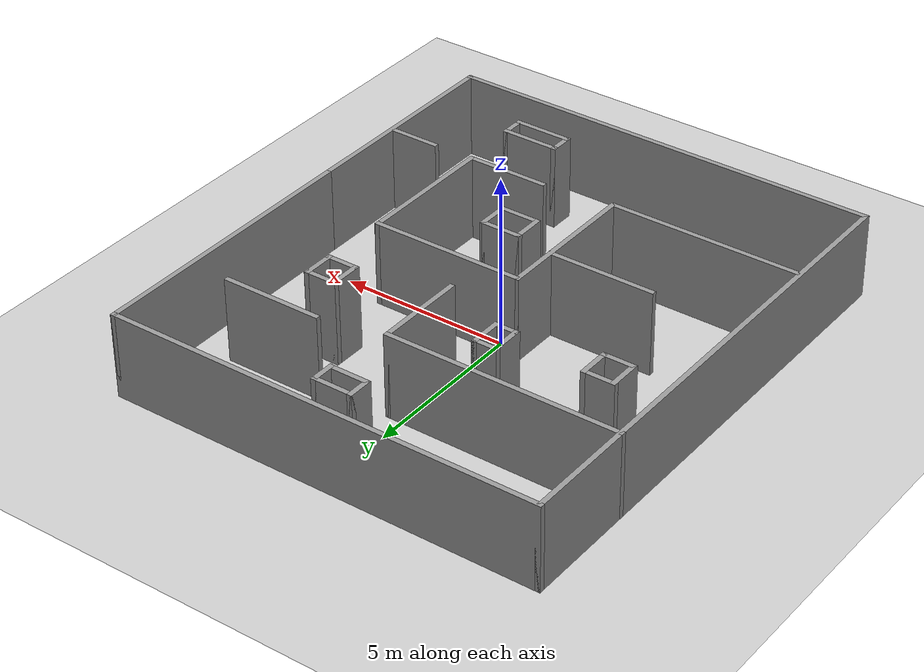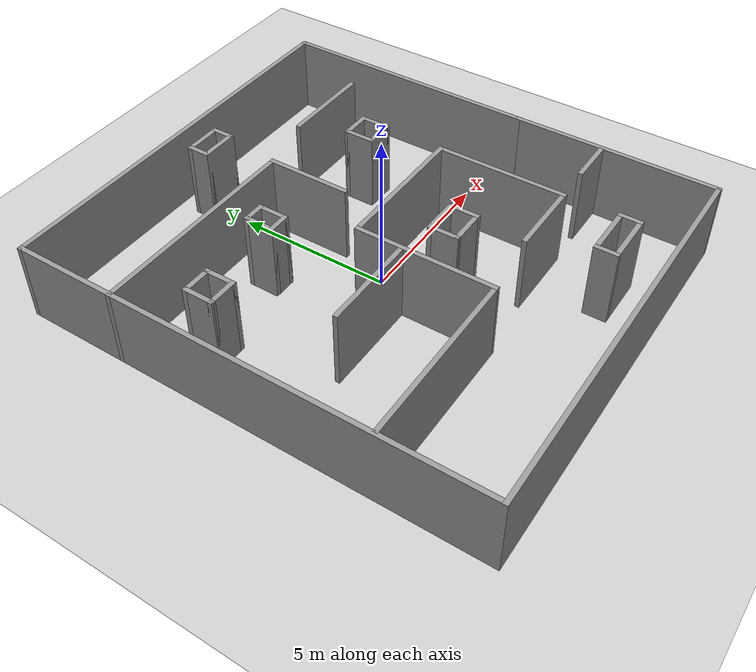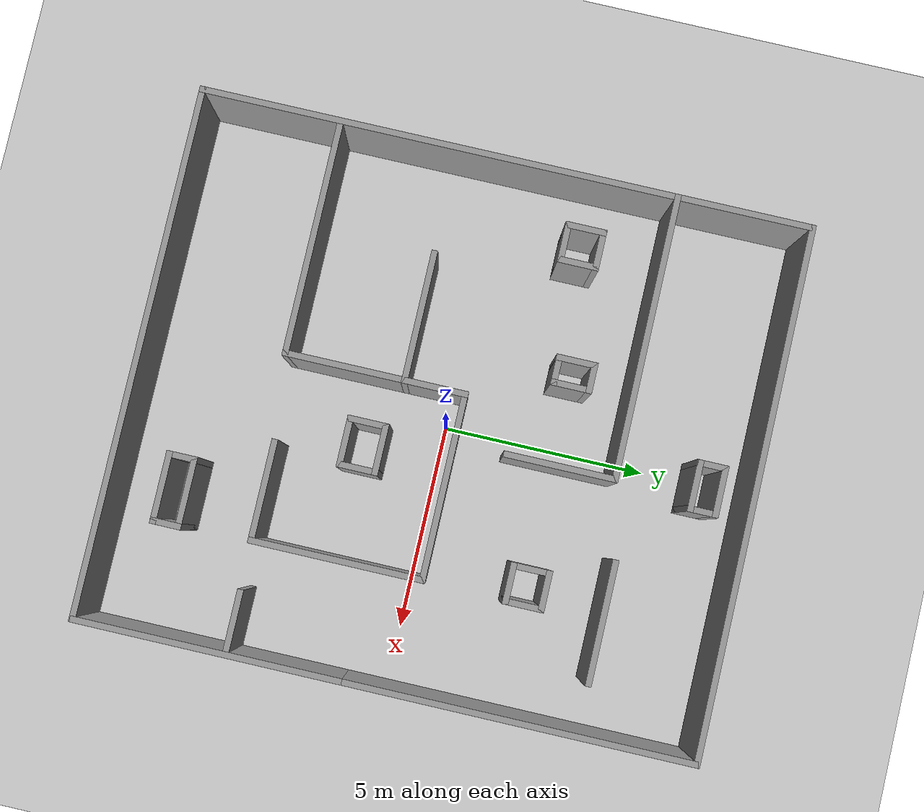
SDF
<sdf version='1.7'>
  <world name='default'>
    <light name='sun' type='directional'>
      <cast_shadows>1</cast_shadows>
      <pose>0 0 10 0 0 0</pose>
      <diffuse>0.8 0.8 0.8 1</diffuse>
      <specular>0.2 0.2 0.2 1</specular>
      <attenuation>
        <range>1000</range>
        <constant>0.9</constant>
        <linear>0.01</linear>
        <quadratic>0.001</quadratic>
      </attenuation>
      <direction>-0.5 0.1 -0.9</direction>
      <spot>
        <inner_angle>0</inner_angle>
        <outer_angle>0</outer_angle>
        <falloff>0</falloff>
      </spot>
    </light>
    <model name='ground_plane'>
      <static>1</static>
      <link name='link'>
        <collision name='collision'>
          <geometry>
            <plane>
              <normal>0 0 1</normal>
              <size>100 100</size>
            </plane>
          </geometry>
          <surface>
            <friction>
              <ode>
                <mu>100</mu>
                <mu2>50</mu2>
              </ode>
              <torsional>
                <ode/>
              </torsional>
            </friction>
            <contact>
              <ode/>
            </contact>
            <bounce/>
          </surface>
          <max_contacts>10</max_contacts>
        </collision>
        <visual name='visual'>
          <cast_shadows>0</cast_shadows>
          <geometry>
            <plane>
              <normal>0 0 1</normal>
              <size>100 100</size>
            </plane>
          </geometry>
          <material>
            <script>
              <uri>file://media/materials/scripts/gazebo.material</uri>
              <name>Gazebo/Grey</name>
            </script>
          </material>
        </visual>
        <self_collide>0</self_collide>
        <enable_wind>0</enable_wind>
        <kinematic>0</kinematic>
      </link>
    </model>
    <gravity>0 0 -9.8</gravity>
    <magnetic_field>6e-06 2.3e-05 -4.2e-05</magnetic_field>
    <atmosphere type='adiabatic'/>
    <physics type='ode'>
      <max_step_size>0.001</max_step_size>
      <real_time_factor>1</real_time_factor>
      <real_time_update_rate>1000</real_time_update_rate>
    </physics>
    <scene>
      <ambient>0.4 0.4 0.4 1</ambient>
      <background>0.7 0.7 0.7 1</background>
      <shadows>1</shadows>
    </scene>
    <audio>
      <device>default</device>
    </audio>
    <wind/>
    <spherical_coordinates>
      <surface_model>EARTH_WGS84</surface_model>
      <latitude_deg>0</latitude_deg>
      <longitude_deg>0</longitude_deg>
      <elevation>0</elevation>
      <heading_deg>0</heading_deg>
    </spherical_coordinates>

    <model name='modelfloor'>
      <pose>0 0 0 0 0 0</pose>
      <link name='Wall_10'>
        <collision name='Wall_10_Collision'>
          <geometry>
            <box>
              <size>6.65 0.15 2.5</size>
            </box>
          </geometry>
          <pose>0 0 1.25 0 -0 0</pose>
        </collision>
        <visual name='Wall_10_Visual'>
          <pose>0 0 1.25 0 -0 0</pose>
          <geometry>
            <box>
              <size>6.65 0.15 2.5</size>
            </box>
          </geometry>
          <material>
            <script>
              <uri>file://media/materials/scripts/gazebo.material</uri>
              <name>Gazebo/Grey</name>
            </script>
            <ambient>0 0 0 1</ambient>
          </material>
          <meta>
            <layer>0</layer>
          </meta>
        </visual>
        <pose>6.42526 -4.175 0 0 -0 1.5708</pose>
      </link>
      <link name='Wall_12'>
        <collision name='Wall_12_Collision'>
          <geometry>
            <box>
              <size>5.75 0.15 2.5</size>
            </box>
          </geometry>
          <pose>0 0 1.25 0 -0 0</pose>
        </collision>
        <visual name='Wall_12_Visual'>
          <pose>0 0 1.25 0 -0 0</pose>
          <geometry>
            <box>
              <size>5.75 0.15 2.5</size>
            </box>
          </geometry>
          <material>
            <script>
              <uri>file://media/materials/scripts/gazebo.material</uri>
              <name>Gazebo/Grey</name>
            </script>
            <ambient>0 0 0 1</ambient>
          </material>
          <meta>
            <layer>0</layer>
          </meta>
        </visual>
        <pose>-3.53364 -4.04218 0 0 -0 8.3e-05</pose>
      </link>
      <link name='Wall_13'>
        <collision name='Wall_13_Collision'>
          <geometry>
            <box>
              <size>4.488 0.15 2.5</size>
            </box>
          </geometry>
          <pose>0 0 1.25 0 -0 0</pose>
        </collision>
        <visual name='Wall_13_Visual'>
          <pose>0 0 1.25 0 -0 0</pose>
          <geometry>
            <box>
              <size>4.488 0.15 2.5</size>
            </box>
          </geometry>
          <material>
            <script>
              <uri>file://media/materials/scripts/gazebo.material</uri>
              <name>Gazebo/Grey</name>
            </script>
            <ambient>0 0 0 1</ambient>
          </material>
          <meta>
            <layer>0</layer>
          </meta>
        </visual>
        <pose>-0.73368 -1.87295 0 0 -0 1.5708</pose>
      </link>
      <link name='Wall_14'>
        <collision name='Wall_14_Collision'>
          <geometry>
            <box>
              <size>4.60358 0.15 2.5</size>
            </box>
          </geometry>
          <pose>0 0 1.25 0 -0 0</pose>
        </collision>
        <visual name='Wall_14_Visual'>
          <pose>0 0 1.25 0 -0 0</pose>
          <geometry>
            <box>
              <size>4.60358 0.15 2.5</size>
            </box>
          </geometry>
          <material>
            <script>
              <uri>file://media/materials/scripts/gazebo.material</uri>
              <name>Gazebo/Grey</name>
            </script>
            <ambient>0 0 0 1</ambient>
          </material>
          <meta>
            <layer>0</layer>
          </meta>
        </visual>
        <pose>1.49311 0.296068 0 0 -0 8e-06</pose>
      </link>
      <link name='Wall_15'>
        <collision name='Wall_15_Collision'>
          <geometry>
            <box>
              <size>4.25 0.15 2.5</size>
            </box>
          </geometry>
          <pose>0 0 1.25 0 -0 0</pose>
        </collision>
        <visual name='Wall_15_Visual'>
          <pose>0 0 1.25 0 -0 0</pose>
          <geometry>
            <box>
              <size>4.25 0.15 2.5</size>
            </box>
          </geometry>
          <material>
            <script>
              <uri>file://media/materials/scripts/gazebo.material</uri>
              <name>Gazebo/Grey</name>
            </script>
            <ambient>0 0 0 1</ambient>
          </material>
          <meta>
            <layer>0</layer>
          </meta>
        </visual>
        <pose>3.7199 -1.75391 0 0 -0 -1.5708</pose>
      </link>
      <link name='Wall_16'>
        <collision name='Wall_16_Collision'>
          <geometry>
            <box>
              <size>2.5 0.15 2.5</size>
            </box>
          </geometry>
          <pose>0 0 1.25 0 -0 0</pose>
        </collision>
        <visual name='Wall_16_Visual'>
          <pose>0 0 1.25 0 -0 0</pose>
          <geometry>
            <box>
              <size>2.5 0.15 2.5</size>
            </box>
          </geometry>
          <material>
            <script>
              <uri>file://media/materials/scripts/gazebo.material</uri>
              <name>Gazebo/Grey</name>
            </script>
            <ambient>0 0 0 1</ambient>
          </material>
          <meta>
            <layer>0</layer>
          </meta>
        </visual>
        <pose>2.5449 -3.80391 0 0 -0 3.14159</pose>
      </link>
      <link name='Wall_18'>
        <collision name='Wall_18_Collision'>
          <geometry>
            <box>
              <size>3.236 0.15 2.5</size>
            </box>
          </geometry>
          <pose>0 0 1.25 0 -0 0</pose>
        </collision>
        <visual name='Wall_18_Visual'>
          <pose>0 0 1.25 0 -0 0</pose>
          <geometry>
            <box>
              <size>3.236 0.15 2.5</size>
            </box>
          </geometry>
          <material>
            <script>
              <uri>file://media/materials/scripts/gazebo.material</uri>
              <name>Gazebo/Grey</name>
            </script>
            <ambient>0 0 0 1</ambient>
          </material>
          <meta>
            <layer>0</layer>
          </meta>
        </visual>
        <pose>-2.27668 -1.16295 0 0 -0 0</pose>
      </link>
      <link name='Wall_20'>
        <collision name='Wall_20_Collision'>
          <geometry>
            <box>
              <size>7 0.15 2.5</size>
            </box>
          </geometry>
          <pose>0 0 1.25 0 -0 0</pose>
        </collision>
        <visual name='Wall_20_Visual'>
          <pose>0 0 1.25 0 -0 0</pose>
          <geometry>
            <box>
              <size>7 0.15 2.5</size>
            </box>
          </geometry>
          <material>
            <script>
              <uri>file://media/materials/scripts/gazebo.material</uri>
              <name>Gazebo/Grey</name>
            </script>
            <ambient>0 0 0 1</ambient>
          </material>
          <meta>
            <layer>0</layer>
          </meta>
        </visual>
        <pose>-3.00027 4.15871 0 0 -0 0</pose>
      </link>
      <link name='Wall_21'>
        <collision name='Wall_21_Collision'>
          <geometry>
            <box>
              <size>2.75 0.15 2.5</size>
            </box>
          </geometry>
          <pose>0 0 1.25 0 -0 0</pose>
        </collision>
        <visual name='Wall_21_Visual'>
          <pose>0 0 1.25 0 -0 0</pose>
          <geometry>
            <box>
              <size>2.75 0.15 2.5</size>
            </box>
          </geometry>
          <material>
            <script>
              <uri>file://media/materials/scripts/gazebo.material</uri>
              <name>Gazebo/Grey</name>
            </script>
            <ambient>0 0 0 1</ambient>
          </material>
          <meta>
            <layer>0</layer>
          </meta>
        </visual>
        <pose>0.424735 2.85871 0 0 -0 -1.5708</pose>
      </link>
      <link name='Wall_23'>
        <collision name='Wall_23_Collision'>
          <geometry>
            <box>
              <size>3 0.15 2.5</size>
            </box>
          </geometry>
          <pose>0 0 1.25 0 -0 0</pose>
        </collision>
        <visual name='Wall_23_Visual'>
          <pose>0 0 1.25 0 -0 0</pose>
          <geometry>
            <box>
              <size>3 0.15 2.5</size>
            </box>
          </geometry>
          <material>
            <script>
              <uri>file://media/materials/scripts/gazebo.material</uri>
              <name>Gazebo/Grey</name>
            </script>
            <ambient>0 0 0 1</ambient>
          </material>
          <meta>
            <layer>0</layer>
          </meta>
        </visual>
        <pose>3.74854 4.58698 0 0 -0 0</pose>
      </link>
      <link name='Wall_27'>
        <collision name='Wall_27_Collision'>
          <geometry>
            <box>
              <size>1 0.15 2.5</size>
            </box>
          </geometry>
          <pose>0 0 1.25 0 -0 0</pose>
        </collision>
        <visual name='Wall_27_Visual'>
          <pose>0 0 1.25 0 -0 0</pose>
          <geometry>
            <box>
              <size>1 0.15 2.5</size>
            </box>
          </geometry>
          <material>
            <script>
              <uri>file://media/materials/scripts/gazebo.material</uri>
              <name>Gazebo/Grey</name>
            </script>
            <ambient>0 0 0 1</ambient>
          </material>
          <meta>
            <layer>0</layer>
          </meta>
        </visual>
        <pose>0.426946 -1.77253 0 0 -0 -1.5708</pose>
      </link>
      <link name='Wall_28'>
        <collision name='Wall_28_Collision'>
          <geometry>
            <box>
              <size>1.25 0.15 2.5</size>
            </box>
          </geometry>
          <pose>0 0 1.25 0 -0 0</pose>
        </collision>
        <visual name='Wall_28_Visual'>
          <pose>0 0 1.25 0 -0 0</pose>
          <geometry>
            <box>
              <size>1.25 0.15 2.5</size>
            </box>
          </geometry>
          <material>
            <script>
              <uri>file://media/materials/scripts/gazebo.material</uri>
              <name>Gazebo/Grey</name>
            </script>
            <ambient>0 0 0 1</ambient>
          </material>
          <meta>
            <layer>0</layer>
          </meta>
        </visual>
        <pose>0.976946 -2.19753 0 0 -0 0</pose>
      </link>
      <link name='Wall_29'>
        <collision name='Wall_29_Collision'>
          <geometry>
            <box>
              <size>1 0.15 2.5</size>
            </box>
          </geometry>
          <pose>0 0 1.25 0 -0 0</pose>
        </collision>
        <visual name='Wall_29_Visual'>
          <pose>0 0 1.25 0 -0 0</pose>
          <geometry>
            <box>
              <size>1 0.15 2.5</size>
            </box>
          </geometry>
          <material>
            <script>
              <uri>file://media/materials/scripts/gazebo.material</uri>
              <name>Gazebo/Grey</name>
            </script>
            <ambient>0 0 0 1</ambient>
          </material>
          <meta>
            <layer>0</layer>
          </meta>
        </visual>
        <pose>1.52695 -1.77253 0 0 -0 1.5708</pose>
      </link>
      <link name='Wall_30'>
        <collision name='Wall_30_Collision'>
          <geometry>
            <box>
              <size>1.25 0.15 2.5</size>
            </box>
          </geometry>
          <pose>0 0 1.25 0 -0 0</pose>
        </collision>
        <visual name='Wall_30_Visual'>
          <pose>0 0 1.25 0 -0 0</pose>
          <geometry>
            <box>
              <size>1.25 0.15 2.5</size>
            </box>
          </geometry>
          <material>
            <script>
              <uri>file://media/materials/scripts/gazebo.material</uri>
              <name>Gazebo/Grey</name>
            </script>
            <ambient>0 0 0 1</ambient>
          </material>
          <meta>
            <layer>0</layer>
          </meta>
        </visual>
        <pose>0.976946 -1.34753 0 0 -0 3.14159</pose>
      </link>
      <link name='Wall_32'>
        <collision name='Wall_32_Collision'>
          <geometry>
            <box>
              <size>1 0.15 2.5</size>
            </box>
          </geometry>
          <pose>0 0 1.25 0 -0 0</pose>
        </collision>
        <visual name='Wall_32_Visual'>
          <pose>0 0 1.25 0 -0 0</pose>
          <geometry>
            <box>
              <size>1 0.15 2.5</size>
            </box>
          </geometry>
          <material>
            <script>
              <uri>file://media/materials/scripts/gazebo.material</uri>
              <name>Gazebo/Grey</name>
            </script>
            <ambient>0 0 0 1</ambient>
          </material>
          <meta>
            <layer>0</layer>
          </meta>
        </visual>
        <pose>-5.20166 2.2042 0 0 -0 -1.5708</pose>
      </link>
      <link name='Wall_33'>
        <collision name='Wall_33_Collision'>
          <geometry>
            <box>
              <size>1 0.15 2.5</size>
            </box>
          </geometry>
          <pose>0 0 1.25 0 -0 0</pose>
        </collision>
        <visual name='Wall_33_Visual'>
          <pose>0 0 1.25 0 -0 0</pose>
          <geometry>
            <box>
              <size>1 0.15 2.5</size>
            </box>
          </geometry>
          <material>
            <script>
              <uri>file://media/materials/scripts/gazebo.material</uri>
              <name>Gazebo/Grey</name>
            </script>
            <ambient>0 0 0 1</ambient>
          </material>
          <meta>
            <layer>0</layer>
          </meta>
        </visual>
        <pose>-4.77666 1.7792 0 0 -0 0</pose>
      </link>
      <link name='Wall_34'>
        <collision name='Wall_34_Collision'>
          <geometry>
            <box>
              <size>1 0.15 2.5</size>
            </box>
          </geometry>
          <pose>0 0 1.25 0 -0 0</pose>
        </collision>
        <visual name='Wall_34_Visual'>
          <pose>0 0 1.25 0 -0 0</pose>
          <geometry>
            <box>
              <size>1 0.15 2.5</size>
            </box>
          </geometry>
          <material>
            <script>
              <uri>file://media/materials/scripts/gazebo.material</uri>
              <name>Gazebo/Grey</name>
            </script>
            <ambient>0 0 0 1</ambient>
          </material>
          <meta>
            <layer>0</layer>
          </meta>
        </visual>
        <pose>-4.35166 2.2042 0 0 -0 1.5708</pose>
      </link>
      <link name='Wall_35'>
        <collision name='Wall_35_Collision'>
          <geometry>
            <box>
              <size>1 0.15 2.5</size>
            </box>
          </geometry>
          <pose>0 0 1.25 0 -0 0</pose>
        </collision>
        <visual name='Wall_35_Visual'>
          <pose>0 0 1.25 0 -0 0</pose>
          <geometry>
            <box>
              <size>1 0.15 2.5</size>
            </box>
          </geometry>
          <material>
            <script>
              <uri>file://media/materials/scripts/gazebo.material</uri>
              <name>Gazebo/Grey</name>
            </script>
            <ambient>0 0 0 1</ambient>
          </material>
          <meta>
            <layer>0</layer>
          </meta>
        </visual>
        <pose>-4.77666 2.6292 0 0 -0 3.14159</pose>
      </link>
      <link name='Wall_4'>
        <collision name='Wall_4_Collision'>
          <geometry>
            <box>
              <size>15 0.15 2.5</size>
            </box>
          </geometry>
          <pose>0 0 1.25 0 -0 0</pose>
        </collision>
        <visual name='Wall_4_Visual'>
          <pose>0 0 1.25 0 -0 0</pose>
          <geometry>
            <box>
              <size>15 0.15 2.5</size>
            </box>
          </geometry>
          <material>
            <script>
              <uri>file://media/materials/scripts/gazebo.material</uri>
              <name>Gazebo/Grey</name>
            </script>
            <ambient>0 0 0 1</ambient>
          </material>
          <meta>
            <layer>0</layer>
          </meta>
        </visual>
        <pose>-6.42474 -0 0 0 -0 -1.5708</pose>
      </link>
      <link name='Wall_42'>
        <collision name='Wall_42_Collision'>
          <geometry>
            <box>
              <size>1 0.15 2.5</size>
            </box>
          </geometry>
          <pose>0 0 1.25 0 -0 0</pose>
        </collision>
        <visual name='Wall_42_Visual'>
          <pose>0 0 1.25 0 -0 0</pose>
          <geometry>
            <box>
              <size>1 0.15 2.5</size>
            </box>
          </geometry>
          <material>
            <script>
              <uri>file://media/materials/scripts/gazebo.material</uri>
              <name>Gazebo/Grey</name>
            </script>
            <ambient>0 0 0 1</ambient>
          </material>
          <meta>
            <layer>0</layer>
          </meta>
        </visual>
        <pose>2.91019 2.71701 0 0 -0 -1.5708</pose>
      </link>
      <link name='Wall_43'>
        <collision name='Wall_43_Collision'>
          <geometry>
            <box>
              <size>1 0.15 2.5</size>
            </box>
          </geometry>
          <pose>0 0 1.25 0 -0 0</pose>
        </collision>
        <visual name='Wall_43_Visual'>
          <pose>0 0 1.25 0 -0 0</pose>
          <geometry>
            <box>
              <size>1 0.15 2.5</size>
            </box>
          </geometry>
          <material>
            <script>
              <uri>file://media/materials/scripts/gazebo.material</uri>
              <name>Gazebo/Grey</name>
            </script>
            <ambient>0 0 0 1</ambient>
          </material>
          <meta>
            <layer>0</layer>
          </meta>
        </visual>
        <pose>3.33519 2.29201 0 0 -0 0</pose>
      </link>
      <link name='Wall_44'>
        <collision name='Wall_44_Collision'>
          <geometry>
            <box>
              <size>1 0.15 2.5</size>
            </box>
          </geometry>
          <pose>0 0 1.25 0 -0 0</pose>
        </collision>
        <visual name='Wall_44_Visual'>
          <pose>0 0 1.25 0 -0 0</pose>
          <geometry>
            <box>
              <size>1 0.15 2.5</size>
            </box>
          </geometry>
          <material>
            <script>
              <uri>file://media/materials/scripts/gazebo.material</uri>
              <name>Gazebo/Grey</name>
            </script>
            <ambient>0 0 0 1</ambient>
          </material>
          <meta>
            <layer>0</layer>
          </meta>
        </visual>
        <pose>3.76019 2.71701 0 0 -0 1.5708</pose>
      </link>
      <link name='Wall_45'>
        <collision name='Wall_45_Collision'>
          <geometry>
            <box>
              <size>1 0.15 2.5</size>
            </box>
          </geometry>
          <pose>0 0 1.25 0 -0 0</pose>
        </collision>
        <visual name='Wall_45_Visual'>
          <pose>0 0 1.25 0 -0 0</pose>
          <geometry>
            <box>
              <size>1 0.15 2.5</size>
            </box>
          </geometry>
          <material>
            <script>
              <uri>file://media/materials/scripts/gazebo.material</uri>
              <name>Gazebo/Grey</name>
            </script>
            <ambient>0 0 0 1</ambient>
          </material>
          <meta>
            <layer>0</layer>
          </meta>
        </visual>
        <pose>3.33519 3.14201 0 0 -0 3.14159</pose>
      </link>
      <link name='Wall_47'>
        <collision name='Wall_47_Collision'>
          <geometry>
            <box>
              <size>0.75 0.15 2.5</size>
            </box>
          </geometry>
          <pose>0 0 1.25 0 -0 0</pose>
        </collision>
        <visual name='Wall_47_Visual'>
          <pose>0 0 1.25 0 -0 0</pose>
          <geometry>
            <box>
              <size>0.75 0.15 2.5</size>
            </box>
          </geometry>
          <material>
            <script>
              <uri>file://media/materials/scripts/gazebo.material</uri>
              <name>Gazebo/Grey</name>
            </script>
            <ambient>0 0 0 1</ambient>
          </material>
          <meta>
            <layer>0</layer>
          </meta>
        </visual>
        <pose>-0.39928 6.32141 0 0 -0 -1.5708</pose>
      </link>
      <link name='Wall_48'>
        <collision name='Wall_48_Collision'>
          <geometry>
            <box>
              <size>1.25 0.15 2.5</size>
            </box>
          </geometry>
          <pose>0 0 1.25 0 -0 0</pose>
        </collision>
        <visual name='Wall_48_Visual'>
          <pose>0 0 1.25 0 -0 0</pose>
          <geometry>
            <box>
              <size>1.25 0.15 2.5</size>
            </box>
          </geometry>
          <material>
            <script>
              <uri>file://media/materials/scripts/gazebo.material</uri>
              <name>Gazebo/Grey</name>
            </script>
            <ambient>0 0 0 1</ambient>
          </material>
          <meta>
            <layer>0</layer>
          </meta>
        </visual>
        <pose>0.15072 6.02141 0 0 -0 0</pose>
      </link>
      <link name='Wall_49'>
        <collision name='Wall_49_Collision'>
          <geometry>
            <box>
              <size>0.75 0.15 2.5</size>
            </box>
          </geometry>
          <pose>0 0 1.25 0 -0 0</pose>
        </collision>
        <visual name='Wall_49_Visual'>
          <pose>0 0 1.25 0 -0 0</pose>
          <geometry>
            <box>
              <size>0.75 0.15 2.5</size>
            </box>
          </geometry>
          <material>
            <script>
              <uri>file://media/materials/scripts/gazebo.material</uri>
              <name>Gazebo/Grey</name>
            </script>
            <ambient>0 0 0 1</ambient>
          </material>
          <meta>
            <layer>0</layer>
          </meta>
        </visual>
        <pose>0.70072 6.32141 0 0 -0 1.5708</pose>
      </link>
      <link name='Wall_50'>
        <collision name='Wall_50_Collision'>
          <geometry>
            <box>
              <size>1.25 0.15 2.5</size>
            </box>
          </geometry>
          <pose>0 0 1.25 0 -0 0</pose>
        </collision>
        <visual name='Wall_50_Visual'>
          <pose>0 0 1.25 0 -0 0</pose>
          <geometry>
            <box>
              <size>1.25 0.15 2.5</size>
            </box>
          </geometry>
          <material>
            <script>
              <uri>file://media/materials/scripts/gazebo.material</uri>
              <name>Gazebo/Grey</name>
            </script>
            <ambient>0 0 0 1</ambient>
          </material>
          <meta>
            <layer>0</layer>
          </meta>
        </visual>
        <pose>0.15072 6.62141 0 0 -0 3.14159</pose>
      </link>
      <link name='Wall_52'>
        <collision name='Wall_52_Collision'>
          <geometry>
            <box>
              <size>1 0.15 2.5</size>
            </box>
          </geometry>
          <pose>0 0 1.25 0 -0 0</pose>
        </collision>
        <visual name='Wall_52_Visual'>
          <pose>0 0 1.25 0 -0 0</pose>
          <geometry>
            <box>
              <size>1 0.15 2.5</size>
            </box>
          </geometry>
          <material>
            <script>
              <uri>file://media/materials/scripts/gazebo.material</uri>
              <name>Gazebo/Grey</name>
            </script>
            <ambient>0 0 0 1</ambient>
          </material>
          <meta>
            <layer>0</layer>
          </meta>
        </visual>
        <pose>-2.07642 2.68664 0 0 -0 -1.5708</pose>
      </link>
      <link name='Wall_53'>
        <collision name='Wall_53_Collision'>
          <geometry>
            <box>
              <size>0.75 0.15 2.5</size>
            </box>
          </geometry>
          <pose>0 0 1.25 0 -0 0</pose>
        </collision>
        <visual name='Wall_53_Visual'>
          <pose>0 0 1.25 0 -0 0</pose>
          <geometry>
            <box>
              <size>0.75 0.15 2.5</size>
            </box>
          </geometry>
          <material>
            <script>
              <uri>file://media/materials/scripts/gazebo.material</uri>
              <name>Gazebo/Grey</name>
            </script>
            <ambient>0 0 0 1</ambient>
          </material>
          <meta>
            <layer>0</layer>
          </meta>
        </visual>
        <pose>-1.77642 2.26164 0 0 -0 0</pose>
      </link>
      <link name='Wall_54'>
        <collision name='Wall_54_Collision'>
          <geometry>
            <box>
              <size>1 0.15 2.5</size>
            </box>
          </geometry>
          <pose>0 0 1.25 0 -0 0</pose>
        </collision>
        <visual name='Wall_54_Visual'>
          <pose>0 0 1.25 0 -0 0</pose>
          <geometry>
            <box>
              <size>1 0.15 2.5</size>
            </box>
          </geometry>
          <material>
            <script>
              <uri>file://media/materials/scripts/gazebo.material</uri>
              <name>Gazebo/Grey</name>
            </script>
            <ambient>0 0 0 1</ambient>
          </material>
          <meta>
            <layer>0</layer>
          </meta>
        </visual>
        <pose>-1.47642 2.68664 0 0 -0 1.5708</pose>
      </link>
      <link name='Wall_55'>
        <collision name='Wall_55_Collision'>
          <geometry>
            <box>
              <size>0.75 0.15 2.5</size>
            </box>
          </geometry>
          <pose>0 0 1.25 0 -0 0</pose>
        </collision>
        <visual name='Wall_55_Visual'>
          <pose>0 0 1.25 0 -0 0</pose>
          <geometry>
            <box>
              <size>0.75 0.15 2.5</size>
            </box>
          </geometry>
          <material>
            <script>
              <uri>file://media/materials/scripts/gazebo.material</uri>
              <name>Gazebo/Grey</name>
            </script>
            <ambient>0 0 0 1</ambient>
          </material>
          <meta>
            <layer>0</layer>
          </meta>
        </visual>
        <pose>-1.77642 3.11164 0 0 -0 3.14159</pose>
      </link>
      <link name='Wall_59'>
        <collision name='Wall_59_Collision'>
          <geometry>
            <box>
              <size>1.75 0.15 2.5</size>
            </box>
          </geometry>
          <pose>0 0 1.25 0 -0 0</pose>
        </collision>
        <visual name='Wall_59_Visual'>
          <pose>0 0 1.25 0 -0 0</pose>
          <geometry>
            <box>
              <size>1.75 0.15 2.5</size>
            </box>
          </geometry>
          <material>
            <script>
              <uri>file://media/materials/scripts/gazebo.material</uri>
              <name>Gazebo/Grey</name>
            </script>
            <ambient>0 0 0 1</ambient>
          </material>
          <meta>
            <layer>0</layer>
          </meta>
        </visual>
        <pose>2.98766 -5.5372 0 0 -0 0</pose>
      </link>
      <link name='Wall_6'>
        <collision name='Wall_6_Collision'>
          <geometry>
            <box>
              <size>13 0.15 2.5</size>
            </box>
          </geometry>
          <pose>0 0 1.25 0 -0 0</pose>
        </collision>
        <visual name='Wall_6_Visual'>
          <pose>0 0 1.25 0 -0 0</pose>
          <geometry>
            <box>
              <size>13 0.15 2.5</size>
            </box>
          </geometry>
          <material>
            <script>
              <uri>file://media/materials/scripts/gazebo.material</uri>
              <name>Gazebo/Grey</name>
            </script>
            <ambient>0 0 0 1</ambient>
          </material>
          <meta>
            <layer>0</layer>
          </meta>
        </visual>
        <pose>0.000264 7.425 0 0 -0 0</pose>
      </link>
      <link name='Wall_60'>
        <collision name='Wall_60_Collision'>
          <geometry>
            <box>
              <size>0.75 0.15 2.5</size>
            </box>
          </geometry>
          <pose>0 0 1.25 0 -0 0</pose>
        </collision>
        <visual name='Wall_60_Visual'>
          <pose>0 0 1.25 0 -0 0</pose>
          <geometry>
            <box>
              <size>0.75 0.15 2.5</size>
            </box>
          </geometry>
          <material>
            <script>
              <uri>file://media/materials/scripts/gazebo.material</uri>
              <name>Gazebo/Grey</name>
            </script>
            <ambient>0 0 0 1</ambient>
          </material>
          <meta>
            <layer>0</layer>
          </meta>
        </visual>
        <pose>3.78765 -5.8372 0 0 -0 -1.5708</pose>
      </link>
      <link name='Wall_61'>
        <collision name='Wall_61_Collision'>
          <geometry>
            <box>
              <size>1.75 0.15 2.5</size>
            </box>
          </geometry>
          <pose>0 0 1.25 0 -0 0</pose>
        </collision>
        <visual name='Wall_61_Visual'>
          <pose>0 0 1.25 0 -0 0</pose>
          <geometry>
            <box>
              <size>1.75 0.15 2.5</size>
            </box>
          </geometry>
          <material>
            <script>
              <uri>file://media/materials/scripts/gazebo.material</uri>
              <name>Gazebo/Grey</name>
            </script>
            <ambient>0 0 0 1</ambient>
          </material>
          <meta>
            <layer>0</layer>
          </meta>
        </visual>
        <pose>2.98766 -6.1372 0 0 -0 3.14159</pose>
      </link>
      <link name='Wall_62'>
        <collision name='Wall_62_Collision'>
          <geometry>
            <box>
              <size>0.75 0.15 2.5</size>
            </box>
          </geometry>
          <pose>0 0 1.25 0 -0 0</pose>
        </collision>
        <visual name='Wall_62_Visual'>
          <pose>0 0 1.25 0 -0 0</pose>
          <geometry>
            <box>
              <size>0.75 0.15 2.5</size>
            </box>
          </geometry>
          <material>
            <script>
              <uri>file://media/materials/scripts/gazebo.material</uri>
              <name>Gazebo/Grey</name>
            </script>
            <ambient>0 0 0 1</ambient>
          </material>
          <meta>
            <layer>0</layer>
          </meta>
        </visual>
        <pose>2.18765 -5.8372 0 0 -0 1.5708</pose>
      </link>
      <link name='Wall_64'>
        <collision name='Wall_64_Collision'>
          <geometry>
            <box>
              <size>1.5 0.15 2.5</size>
            </box>
          </geometry>
          <pose>0 0 1.25 0 -0 0</pose>
        </collision>
        <visual name='Wall_64_Visual'>
          <pose>0 0 1.25 0 -0 0</pose>
          <geometry>
            <box>
              <size>1.5 0.15 2.5</size>
            </box>
          </geometry>
          <material>
            <script>
              <uri>file://media/materials/scripts/gazebo.material</uri>
              <name>Gazebo/Grey</name>
            </script>
            <ambient>0 0 0 1</ambient>
          </material>
          <meta>
            <layer>0</layer>
          </meta>
        </visual>
        <pose>5.62756 -3.76992 0 0 -0 0</pose>
      </link>
      <link name='Wall_7'>
        <collision name='Wall_7_Collision'>
          <geometry>
            <box>
              <size>8.5 0.15 2.5</size>
            </box>
          </geometry>
          <pose>0 0 1.25 0 -0 0</pose>
        </collision>
        <visual name='Wall_7_Visual'>
          <pose>0 0 1.25 0 -0 0</pose>
          <geometry>
            <box>
              <size>8.5 0.15 2.5</size>
            </box>
          </geometry>
          <material>
            <script>
              <uri>file://media/materials/scripts/gazebo.material</uri>
              <name>Gazebo/Grey</name>
            </script>
            <ambient>0 0 0 1</ambient>
          </material>
          <meta>
            <layer>0</layer>
          </meta>
        </visual>
        <pose>6.42526 3.25 0 0 -0 -1.5708</pose>
      </link>
      <link name='Wall_9'>
        <collision name='Wall_9_Collision'>
          <geometry>
            <box>
              <size>13 0.15 2.5</size>
            </box>
          </geometry>
          <pose>0 0 1.25 0 -0 0</pose>
        </collision>
        <visual name='Wall_9_Visual'>
          <pose>0 0 1.25 0 -0 0</pose>
          <geometry>
            <box>
              <size>13 0.15 2.5</size>
            </box>
          </geometry>
          <material>
            <script>
              <uri>file://media/materials/scripts/gazebo.material</uri>
              <name>Gazebo/Grey</name>
            </script>
            <ambient>0 0 0 1</ambient>
          </material>
          <meta>
            <layer>0</layer>
          </meta>
        </visual>
        <pose>0.000264 -7.425 0 0 -0 0</pose>
      </link>
      <static>1</static>
    </model>
  </world>
</sdf>
